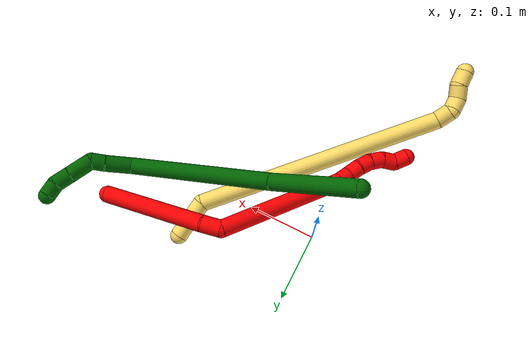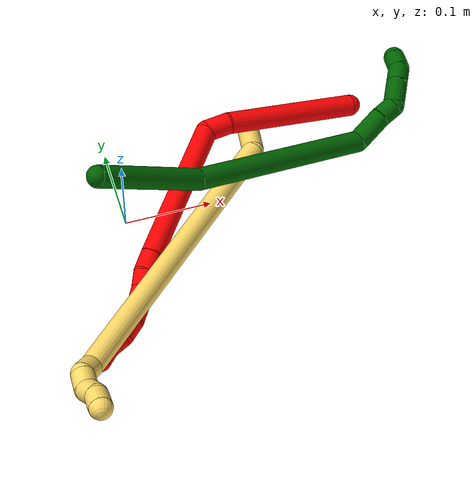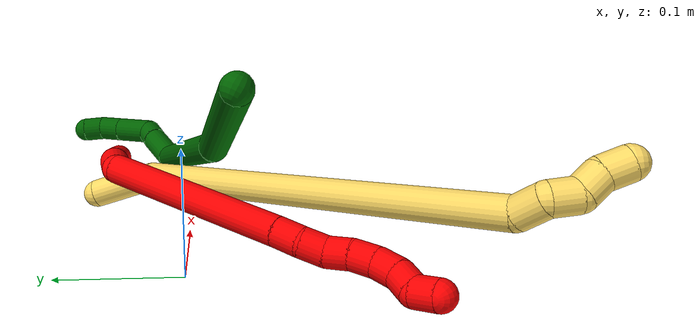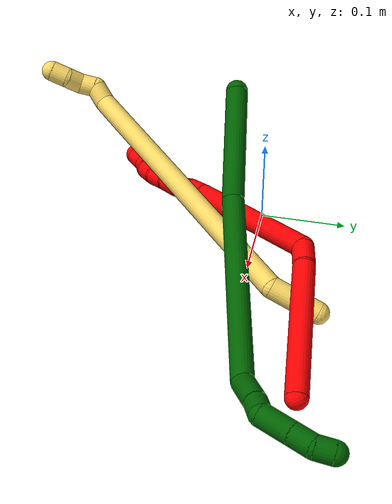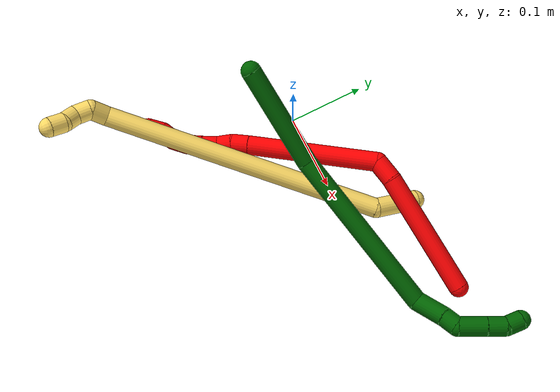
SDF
<sdf version="1.7">
 <world name="default">
  <model name="photoneo_s_sensor">
   <static>1</static>
   <pose>0 0 2 1.57079 1.57079 3.14159</pose>
   <link name="link">
    <inertial><mass>0.1</mass></inertial>
    <sensor name="sensor" type="depth">
     <update_rate>30</update_rate>
     <camera>
      <horizontal_fov>1.22</horizontal_fov>
      <image><width>1920</width><height>1200</height><format>B8G8R8</format></image>
      <clip><near>0.1</near><far>4</far></clip>
      <depth_camera><output>points</output></depth_camera>
     </camera>
     <plugin name="camera_plugin" filename="libgazebo_ros_depth_camera.so">
      <baseline>0.2</baseline>
      <alwaysOn>1</alwaysOn>
      <updateRate>0.0</updateRate>
      <cameraName>camera_ir</cameraName>
      <imageTopicName>/camera/color/image_raw</imageTopicName>
      <cameraInfoTopicName>/camera/color/camera_info</cameraInfoTopicName>
      <depthImageTopicName>/camera/depth/image_raw</depthImageTopicName>
      <depthImageCameraInfoTopicName>/camera/depth/camera_info</depthImageCameraInfoTopicName>
      <pointCloudTopicName>/camera/depth/points</pointCloudTopicName>
      <frameName>fr_optical</frameName>
      <pointCloudCutoff>0.1</pointCloudCutoff>
      <pointCloudCutoffMax>2.0</pointCloudCutoffMax>
      <distortionK1>0</distortionK1>
      <distortionK2>0</distortionK2>
      <distortionK3>0</distortionK3>
      <distortionT1>0</distortionT1>
      <distortionT2>0</distortionT2>
      <CxPrime>0</CxPrime>
      <Cx>0</Cx>
      <Cy>0</Cy>
      <focalLength>0</focalLength>
      <hackBaseline>0</hackBaseline>
     </plugin>
    </sensor>
   </link>
  </model>
  <model name="bin">
   <static>1</static>
   <link name="bottom">
    <collision name="collision-bottom">
     <pose>0 0 -0.01 0 -0 0</pose>
     <geometry><box><size>0.8 0.6 0.02</size></box></geometry>
     <surface>
      <friction><ode><mu>100</mu><mu2>100</mu2></ode></friction>
      <contact><collide_bitmask>65535</collide_bitmask></contact>
     </surface>
    </collision>
   </link>
   <link name="west_wall">
    <collision name="collision-west_wall">
     <pose>-0.41 0 0.1 0 -0 0</pose>
     <geometry><box><size>0.02 0.6 0.2</size></box></geometry>
     <surface>
      <friction><ode><mu>100</mu><mu2>100</mu2></ode></friction>
      <contact><collide_bitmask>65535</collide_bitmask></contact>
     </surface>
    </collision>
   </link>
   <link name="east_wall">
    <collision name="collision-east_wall">
     <pose>0.41 0 0.1 0 -0 0</pose>
     <geometry><box><size>0.02 0.6 0.2</size></box></geometry>
     <surface>
      <friction><ode><mu>100</mu><mu2>100</mu2></ode></friction>
      <contact><collide_bitmask>65535</collide_bitmask></contact>
     </surface>
    </collision>
   </link>
   <link name="south_wall">
    <collision name="collision-south_wall">
     <pose>0 -0.31 0.1 0 -0 0</pose>
     <geometry><box><size>0.8 0.02 0.2</size></box></geometry>
     <surface>
      <friction><ode><mu>100</mu><mu2>100</mu2></ode></friction>
      <contact><collide_bitmask>65535</collide_bitmask></contact>
     </surface>
    </collision>
   </link>
   <link name="north_wall">
    <collision name="collision-north_wall">
     <pose>0 0.31 0.1 0 -0 0</pose>
     <geometry><box><size>0.8 0.02 0.2</size></box></geometry>
     <surface>
      <friction><ode><mu>100</mu><mu2>100</mu2></ode></friction>
      <contact><collide_bitmask>65535</collide_bitmask></contact>
     </surface>
    </collision>
   </link>
  </model>
  <model name="2">
   <static>0</static>
   <link name="2">
    <collision name="collision-cylinder-e_1_1_4">
     <pose>-0.045443 -0.034044 0.056692 0.540791 -0.602076 -0.171694</pose>
     <geometry><cylinder><radius>0.0125</radius><length>0.160476</length></cylinder></geometry>
     <surface>
      <friction><ode><mu>1.16</mu><mu2>1.16</mu2><slip1>0</slip1><slip2>0</slip2></ode></friction>
      <contact><ode><kp>1e+06</kp><kd>1</kd><max_vel>0</max_vel><min_depth>0.001</min_depth></ode></contact>
     </surface>
    </collision>
    <visual name="visual-cylinder-e_1_1_4">
     <pose>-0.045443 -0.034044 0.056692 0.540791 -0.602076 -0.171694</pose>
     <geometry><cylinder><radius>0.0125</radius><length>0.160476</length></cylinder></geometry>
     <material><ambient>1 0 0 1</ambient></material>
    </visual>
    <collision name="collision-cylinder-e_2_4_5">
     <pose>-0.100859 -0.072039 0.122672 0.402217 -0.779429 -0.167073</pose>
     <geometry><cylinder><radius>0.0125</radius><length>0.028378</length></cylinder></geometry>
     <surface>
      <friction><ode><mu>1.16</mu><mu2>1.16</mu2><slip1>0</slip1><slip2>0</slip2></ode></friction>
      <contact><ode><kp>1e+06</kp><kd>1</kd><max_vel>0</max_vel><min_depth>0.001</min_depth></ode></contact>
     </surface>
    </collision>
    <visual name="visual-cylinder-e_2_4_5">
     <pose>-0.100859 -0.072039 0.122672 0.402217 -0.779429 -0.167073</pose>
     <geometry><cylinder><radius>0.0125</radius><length>0.028378</length></cylinder></geometry>
     <material><ambient>1 0 0 1</ambient></material>
    </visual>
    <collision name="collision-cylinder-e_3_5_6">
     <pose>-0.192776 -0.094385 0.129532 1.70201 -1.34812 -1.47799</pose>
     <geometry><cylinder><radius>0.0125</radius><length>0.168037</length></cylinder></geometry>
     <surface>
      <friction><ode><mu>1.16</mu><mu2>1.16</mu2><slip1>0</slip1><slip2>0</slip2></ode></friction>
      <contact><ode><kp>1e+06</kp><kd>1</kd><max_vel>0</max_vel><min_depth>0.001</min_depth></ode></contact>
     </surface>
    </collision>
    <visual name="visual-cylinder-e_3_5_6">
     <pose>-0.192776 -0.094385 0.129532 1.70201 -1.34812 -1.47799</pose>
     <geometry><cylinder><radius>0.0125</radius><length>0.168037</length></cylinder></geometry>
     <material><ambient>1 0 0 1</ambient></material>
    </visual>
    <collision name="collision-cylinder-e_4_6_7">
     <pose>-0.285558 -0.114702 0.126561 1.84654 -1.38857 -1.66671</pose>
     <geometry><cylinder><radius>0.0125</radius><length>0.02204</length></cylinder></geometry>
     <surface>
      <friction><ode><mu>1.16</mu><mu2>1.16</mu2><slip1>0</slip1><slip2>0</slip2></ode></friction>
      <contact><ode><kp>1e+06</kp><kd>1</kd><max_vel>0</max_vel><min_depth>0.001</min_depth></ode></contact>
     </surface>
    </collision>
    <visual name="visual-cylinder-e_4_6_7">
     <pose>-0.285558 -0.114702 0.126561 1.84654 -1.38857 -1.66671</pose>
     <geometry><cylinder><radius>0.0125</radius><length>0.02204</length></cylinder></geometry>
     <material><ambient>1 0 0 1</ambient></material>
    </visual>
    <collision name="collision-cylinder-e_5_7_8">
     <pose>-0.306146 -0.117605 0.123247 2.80109 -1.27809 -2.68686</pose>
     <geometry><cylinder><radius>0.0125</radius><length>0.020368</length></cylinder></geometry>
     <surface>
      <friction><ode><mu>1.16</mu><mu2>1.16</mu2><slip1>0</slip1><slip2>0</slip2></ode></friction>
      <contact><ode><kp>1e+06</kp><kd>1</kd><max_vel>0</max_vel><min_depth>0.001</min_depth></ode></contact>
     </surface>
    </collision>
    <visual name="visual-cylinder-e_5_7_8">
     <pose>-0.306146 -0.117605 0.123247 2.80109 -1.27809 -2.68686</pose>
     <geometry><cylinder><radius>0.0125</radius><length>0.020368</length></cylinder></geometry>
     <material><ambient>1 0 0 1</ambient></material>
    </visual>
    <collision name="collision-cylinder-e_6_8_9">
     <pose>-0.324944 -0.122734 0.118523 2.0111 -1.10171 -1.53876</pose>
     <geometry><cylinder><radius>0.0125</radius><length>0.020285</length></cylinder></geometry>
     <surface>
      <friction><ode><mu>1.16</mu><mu2>1.16</mu2><slip1>0</slip1><slip2>0</slip2></ode></friction>
      <contact><ode><kp>1e+06</kp><kd>1</kd><max_vel>0</max_vel><min_depth>0.001</min_depth></ode></contact>
     </surface>
    </collision>
    <visual name="visual-cylinder-e_6_8_9">
     <pose>-0.324944 -0.122734 0.118523 2.0111 -1.10171 -1.53876</pose>
     <geometry><cylinder><radius>0.0125</radius><length>0.020285</length></cylinder></geometry>
     <material><ambient>1 0 0 1</ambient></material>
    </visual>
    <collision name="collision-cylinder-e_7_9_10">
     <pose>-0.343651 -0.129343 0.115562 1.95892 -1.30217 -1.6968</pose>
     <geometry><cylinder><radius>0.0125</radius><length>0.02004</length></cylinder></geometry>
     <surface>
      <friction><ode><mu>1.16</mu><mu2>1.16</mu2><slip1>0</slip1><slip2>0</slip2></ode></friction>
      <contact><ode><kp>1e+06</kp><kd>1</kd><max_vel>0</max_vel><min_depth>0.001</min_depth></ode></contact>
     </surface>
    </collision>
    <visual name="visual-cylinder-e_7_9_10">
     <pose>-0.343651 -0.129343 0.115562 1.95892 -1.30217 -1.6968</pose>
     <geometry><cylinder><radius>0.0125</radius><length>0.02004</length></cylinder></geometry>
     <material><ambient>1 0 0 1</ambient></material>
    </visual>
    <collision name="collision-cylinder-e_8_10_11">
     <pose>-0.363081 -0.133616 0.116032 0.886897 -1.33607 -0.717199</pose>
     <geometry><cylinder><radius>0.0125</radius><length>0.020089</length></cylinder></geometry>
     <surface>
      <friction><ode><mu>1.16</mu><mu2>1.16</mu2><slip1>0</slip1><slip2>0</slip2></ode></friction>
      <contact><ode><kp>1e+06</kp><kd>1</kd><max_vel>0</max_vel><min_depth>0.001</min_depth></ode></contact>
     </surface>
    </collision>
    <visual name="visual-cylinder-e_8_10_11">
     <pose>-0.363081 -0.133616 0.116032 0.886897 -1.33607 -0.717199</pose>
     <geometry><cylinder><radius>0.0125</radius><length>0.020089</length></cylinder></geometry>
     <material><ambient>1 0 0 1</ambient></material>
    </visual>
    <collision name="collision-cylinder-e_9_11_12">
     <pose>-0.38177 -0.135722 0.122326 0.061247 -1.07472 -0.036501</pose>
     <geometry><cylinder><radius>0.0125</radius><length>0.020284</length></cylinder></geometry>
     <surface>
      <friction><ode><mu>1.16</mu><mu2>1.16</mu2><slip1>0</slip1><slip2>0</slip2></ode></friction>
      <contact><ode><kp>1e+06</kp><kd>1</kd><max_vel>0</max_vel><min_depth>0.001</min_depth></ode></contact>
     </surface>
    </collision>
    <visual name="visual-cylinder-e_9_11_12">
     <pose>-0.38177 -0.135722 0.122326 0.061247 -1.07472 -0.036501</pose>
     <geometry><cylinder><radius>0.0125</radius><length>0.020284</length></cylinder></geometry>
     <material><ambient>1 0 0 1</ambient></material>
    </visual>
    <collision name="collision-cylinder-e_10_12_2">
     <pose>-0.399566 -0.140601 0.127618 1.46778 -1.09197 -1.00264</pose>
     <geometry><cylinder><radius>0.0125</radius><length>0.020003</length></cylinder></geometry>
     <surface>
      <friction><ode><mu>1.16</mu><mu2>1.16</mu2><slip1>0</slip1><slip2>0</slip2></ode></friction>
      <contact><ode><kp>1e+06</kp><kd>1</kd><max_vel>0</max_vel><min_depth>0.001</min_depth></ode></contact>
     </surface>
    </collision>
    <visual name="visual-cylinder-e_10_12_2">
     <pose>-0.399566 -0.140601 0.127618 1.46778 -1.09197 -1.00264</pose>
     <geometry><cylinder><radius>0.0125</radius><length>0.020003</length></cylinder></geometry>
     <material><ambient>1 0 0 1</ambient></material>
    </visual>
    <collision name="collision-sphere-2">
     <pose>-0.408443 -0.145185 0.128092 0 -0 0</pose>
     <geometry><sphere><radius>0.0125</radius></sphere></geometry>
     <surface>
      <friction><ode><mu>1.16</mu><mu2>1.16</mu2><slip1>0</slip1><slip2>0</slip2></ode></friction>
      <contact><ode><kp>1e+06</kp><kd>1</kd><max_vel>0</max_vel><min_depth>0.001</min_depth></ode></contact>
     </surface>
    </collision>
    <visual name="visual-sphere-2">
     <pose>-0.408443 -0.145185 0.128092 0 -0 0</pose>
     <geometry><sphere><radius>0.0125</radius></sphere></geometry>
     <material><ambient>1 0 0 1</ambient></material>
    </visual>
    <collision name="collision-sphere-12">
     <pose>-0.390689 -0.136017 0.127145 0 -0 0</pose>
     <geometry><sphere><radius>0.0125</radius></sphere></geometry>
     <surface>
      <friction><ode><mu>1.16</mu><mu2>1.16</mu2><slip1>0</slip1><slip2>0</slip2></ode></friction>
      <contact><ode><kp>1e+06</kp><kd>1</kd><max_vel>0</max_vel><min_depth>0.001</min_depth></ode></contact>
     </surface>
    </collision>
    <visual name="visual-sphere-12">
     <pose>-0.390689 -0.136017 0.127145 0 -0 0</pose>
     <geometry><sphere><radius>0.0125</radius></sphere></geometry>
     <material><ambient>1 0 0 1</ambient></material>
    </visual>
    <collision name="collision-sphere-11">
     <pose>-0.372851 -0.135427 0.117508 0 -0 0</pose>
     <geometry><sphere><radius>0.0125</radius></sphere></geometry>
     <surface>
      <friction><ode><mu>1.16</mu><mu2>1.16</mu2><slip1>0</slip1><slip2>0</slip2></ode></friction>
      <contact><ode><kp>1e+06</kp><kd>1</kd><max_vel>0</max_vel><min_depth>0.001</min_depth></ode></contact>
     </surface>
    </collision>
    <visual name="visual-sphere-11">
     <pose>-0.372851 -0.135427 0.117508 0 -0 0</pose>
     <geometry><sphere><radius>0.0125</radius></sphere></geometry>
     <material><ambient>1 0 0 1</ambient></material>
    </visual>
    <collision name="collision-sphere-10">
     <pose>-0.353312 -0.131805 0.114556 0 -0 0</pose>
     <geometry><sphere><radius>0.0125</radius></sphere></geometry>
     <surface>
      <friction><ode><mu>1.16</mu><mu2>1.16</mu2><slip1>0</slip1><slip2>0</slip2></ode></friction>
      <contact><ode><kp>1e+06</kp><kd>1</kd><max_vel>0</max_vel><min_depth>0.001</min_depth></ode></contact>
     </surface>
    </collision>
    <visual name="visual-sphere-10">
     <pose>-0.353312 -0.131805 0.114556 0 -0 0</pose>
     <geometry><sphere><radius>0.0125</radius></sphere></geometry>
     <material><ambient>1 0 0 1</ambient></material>
    </visual>
    <collision name="collision-sphere-9">
     <pose>-0.333991 -0.126882 0.116569 0 -0 0</pose>
     <geometry><sphere><radius>0.0125</radius></sphere></geometry>
     <surface>
      <friction><ode><mu>1.16</mu><mu2>1.16</mu2><slip1>0</slip1><slip2>0</slip2></ode></friction>
      <contact><ode><kp>1e+06</kp><kd>1</kd><max_vel>0</max_vel><min_depth>0.001</min_depth></ode></contact>
     </surface>
    </collision>
    <visual name="visual-sphere-9">
     <pose>-0.333991 -0.126882 0.116569 0 -0 0</pose>
     <geometry><sphere><radius>0.0125</radius></sphere></geometry>
     <material><ambient>1 0 0 1</ambient></material>
    </visual>
    <collision name="collision-sphere-4">
     <pose>-0.090886 -0.068088 0.113385 0 -0 0</pose>
     <geometry><sphere><radius>0.0125</radius></sphere></geometry>
     <surface>
      <friction><ode><mu>1.16</mu><mu2>1.16</mu2><slip1>0</slip1><slip2>0</slip2></ode></friction>
      <contact><ode><kp>1e+06</kp><kd>1</kd><max_vel>0</max_vel><min_depth>0.001</min_depth></ode></contact>
     </surface>
    </collision>
    <visual name="visual-sphere-4">
     <pose>-0.090886 -0.068088 0.113385 0 -0 0</pose>
     <geometry><sphere><radius>0.0125</radius></sphere></geometry>
     <material><ambient>1 0 0 1</ambient></material>
    </visual>
    <collision name="collision-sphere-1">
     <geometry><sphere><radius>0.0125</radius></sphere></geometry>
     <surface>
      <friction><ode><mu>1.16</mu><mu2>1.16</mu2><slip1>0</slip1><slip2>0</slip2></ode></friction>
      <contact><ode><kp>1e+06</kp><kd>1</kd><max_vel>0</max_vel><min_depth>0.001</min_depth></ode></contact>
     </surface>
    </collision>
    <visual name="visual-sphere-1">
     <geometry><sphere><radius>0.0125</radius></sphere></geometry>
     <material><ambient>1 0 0 1</ambient></material>
    </visual>
    <collision name="collision-sphere-8">
     <pose>-0.315897 -0.118586 0.120477 0 -0 0</pose>
     <geometry><sphere><radius>0.0125</radius></sphere></geometry>
     <surface>
      <friction><ode><mu>1.16</mu><mu2>1.16</mu2><slip1>0</slip1><slip2>0</slip2></ode></friction>
      <contact><ode><kp>1e+06</kp><kd>1</kd><max_vel>0</max_vel><min_depth>0.001</min_depth></ode></contact>
     </surface>
    </collision>
    <visual name="visual-sphere-8">
     <pose>-0.315897 -0.118586 0.120477 0 -0 0</pose>
     <geometry><sphere><radius>0.0125</radius></sphere></geometry>
     <material><ambient>1 0 0 1</ambient></material>
    </visual>
    <collision name="collision-sphere-5">
     <pose>-0.110832 -0.07599 0.13196 0 -0 0</pose>
     <geometry><sphere><radius>0.0125</radius></sphere></geometry>
     <surface>
      <friction><ode><mu>1.16</mu><mu2>1.16</mu2><slip1>0</slip1><slip2>0</slip2></ode></friction>
      <contact><ode><kp>1e+06</kp><kd>1</kd><max_vel>0</max_vel><min_depth>0.001</min_depth></ode></contact>
     </surface>
    </collision>
    <visual name="visual-sphere-5">
     <pose>-0.110832 -0.07599 0.13196 0 -0 0</pose>
     <geometry><sphere><radius>0.0125</radius></sphere></geometry>
     <material><ambient>1 0 0 1</ambient></material>
    </visual>
    <collision name="collision-sphere-6">
     <pose>-0.27472 -0.11278 0.127104 0 -0 0</pose>
     <geometry><sphere><radius>0.0125</radius></sphere></geometry>
     <surface>
      <friction><ode><mu>1.16</mu><mu2>1.16</mu2><slip1>0</slip1><slip2>0</slip2></ode></friction>
      <contact><ode><kp>1e+06</kp><kd>1</kd><max_vel>0</max_vel><min_depth>0.001</min_depth></ode></contact>
     </surface>
    </collision>
    <visual name="visual-sphere-6">
     <pose>-0.27472 -0.11278 0.127104 0 -0 0</pose>
     <geometry><sphere><radius>0.0125</radius></sphere></geometry>
     <material><ambient>1 0 0 1</ambient></material>
    </visual>
    <collision name="collision-sphere-7">
     <pose>-0.296395 -0.116624 0.126017 0 -0 0</pose>
     <geometry><sphere><radius>0.0125</radius></sphere></geometry>
     <surface>
      <friction><ode><mu>1.16</mu><mu2>1.16</mu2><slip1>0</slip1><slip2>0</slip2></ode></friction>
      <contact><ode><kp>1e+06</kp><kd>1</kd><max_vel>0</max_vel><min_depth>0.001</min_depth></ode></contact>
     </surface>
    </collision>
    <visual name="visual-sphere-7">
     <pose>-0.296395 -0.116624 0.126017 0 -0 0</pose>
     <geometry><sphere><radius>0.0125</radius></sphere></geometry>
     <material><ambient>1 0 0 1</ambient></material>
    </visual>
    <inertial>
     <pose>-0.183172 -0.083245 0.10346 0 -0 0</pose>
     <mass>0.5</mass>
     <inertia>
      <ixx>0.000124</ixx>
      <ixy>0</ixy>
      <ixz>0</ixz>
      <iyy>0.000557</iyy>
      <iyz>0</iyz>
      <izz>0.000853</izz>
     </inertia>
    </inertial>
   </link>
   <pose>0.296326 0.08392 0.012449 -1.50734 -0.3551 0.87862</pose>
  </model>
  <model name="5">
   <static>0</static>
   <link name="5">
    <collision name="collision-cylinder-e_1_1_4">
     <pose>-0.007293 -0.000369 0.027575 0.013381 -0.258518 -0.001739</pose>
     <geometry><cylinder><radius>0.0125</radius><length>0.057052</length></cylinder></geometry>
     <surface>
      <friction><ode><mu>1.16</mu><mu2>1.16</mu2><slip1>0</slip1><slip2>0</slip2></ode></friction>
      <contact><ode><kp>1e+06</kp><kd>1</kd><max_vel>0</max_vel><min_depth>0.001</min_depth></ode></contact>
     </surface>
    </collision>
    <visual name="visual-cylinder-e_1_1_4">
     <pose>-0.007293 -0.000369 0.027575 0.013381 -0.258518 -0.001739</pose>
     <geometry><cylinder><radius>0.0125</radius><length>0.057052</length></cylinder></geometry>
     <material><ambient>1 0.858824 0.4 1</ambient></material>
    </visual>
    <collision name="collision-cylinder-e_2_4_5">
     <pose>-0.062048 -0.106567 0.192363 0.65698 -0.267346 -0.091604</pose>
     <geometry><cylinder><radius>0.0125</radius><length>0.359331</length></cylinder></geometry>
     <surface>
      <friction><ode><mu>1.16</mu><mu2>1.16</mu2><slip1>0</slip1><slip2>0</slip2></ode></friction>
      <contact><ode><kp>1e+06</kp><kd>1</kd><max_vel>0</max_vel><min_depth>0.001</min_depth></ode></contact>
     </surface>
    </collision>
    <visual name="visual-cylinder-e_2_4_5">
     <pose>-0.062048 -0.106567 0.192363 0.65698 -0.267346 -0.091604</pose>
     <geometry><cylinder><radius>0.0125</radius><length>0.359331</length></cylinder></geometry>
     <material><ambient>1 0.858824 0.4 1</ambient></material>
    </visual>
    <collision name="collision-cylinder-e_3_5_6">
     <pose>-0.116951 -0.215411 0.337875 0.348447 -0.700212 -0.128362</pose>
     <geometry><cylinder><radius>0.0125</radius><length>0.023095</length></cylinder></geometry>
     <surface>
      <friction><ode><mu>1.16</mu><mu2>1.16</mu2><slip1>0</slip1><slip2>0</slip2></ode></friction>
      <contact><ode><kp>1e+06</kp><kd>1</kd><max_vel>0</max_vel><min_depth>0.001</min_depth></ode></contact>
     </surface>
    </collision>
    <visual name="visual-cylinder-e_3_5_6">
     <pose>-0.116951 -0.215411 0.337875 0.348447 -0.700212 -0.128362</pose>
     <geometry><cylinder><radius>0.0125</radius><length>0.023095</length></cylinder></geometry>
     <material><ambient>1 0.858824 0.4 1</ambient></material>
    </visual>
    <collision name="collision-cylinder-e_4_6_7">
     <pose>-0.124512 -0.217947 0.356323 -0.047096 -0.011757 0.000277</pose>
     <geometry><cylinder><radius>0.0125</radius><length>0.020321</length></cylinder></geometry>
     <surface>
      <friction><ode><mu>1.16</mu><mu2>1.16</mu2><slip1>0</slip1><slip2>0</slip2></ode></friction>
      <contact><ode><kp>1e+06</kp><kd>1</kd><max_vel>0</max_vel><min_depth>0.001</min_depth></ode></contact>
     </surface>
    </collision>
    <visual name="visual-cylinder-e_4_6_7">
     <pose>-0.124512 -0.217947 0.356323 -0.047096 -0.011757 0.000277</pose>
     <geometry><cylinder><radius>0.0125</radius><length>0.020321</length></cylinder></geometry>
     <material><ambient>1 0.858824 0.4 1</ambient></material>
    </visual>
    <collision name="collision-cylinder-e_5_7_8">
     <pose>-0.127837 -0.212114 0.37437 -0.595771 -0.324145 0.100316</pose>
     <geometry><cylinder><radius>0.0125</radius><length>0.020134</length></cylinder></geometry>
     <surface>
      <friction><ode><mu>1.16</mu><mu2>1.16</mu2><slip1>0</slip1><slip2>0</slip2></ode></friction>
      <contact><ode><kp>1e+06</kp><kd>1</kd><max_vel>0</max_vel><min_depth>0.001</min_depth></ode></contact>
     </surface>
    </collision>
    <visual name="visual-cylinder-e_5_7_8">
     <pose>-0.127837 -0.212114 0.37437 -0.595771 -0.324145 0.100316</pose>
     <geometry><cylinder><radius>0.0125</radius><length>0.020134</length></cylinder></geometry>
     <material><ambient>1 0.858824 0.4 1</ambient></material>
    </visual>
    <collision name="collision-cylinder-e_6_8_2">
     <pose>-0.133276 -0.20511 0.391912 -0.169405 -0.224337 0.019127</pose>
     <geometry><cylinder><radius>0.0125</radius><length>0.020068</length></cylinder></geometry>
     <surface>
      <friction><ode><mu>1.16</mu><mu2>1.16</mu2><slip1>0</slip1><slip2>0</slip2></ode></friction>
      <contact><ode><kp>1e+06</kp><kd>1</kd><max_vel>0</max_vel><min_depth>0.001</min_depth></ode></contact>
     </surface>
    </collision>
    <visual name="visual-cylinder-e_6_8_2">
     <pose>-0.133276 -0.20511 0.391912 -0.169405 -0.224337 0.019127</pose>
     <geometry><cylinder><radius>0.0125</radius><length>0.020068</length></cylinder></geometry>
     <material><ambient>1 0.858824 0.4 1</ambient></material>
    </visual>
    <collision name="collision-sphere-2">
     <pose>-0.135508 -0.203461 0.401554 0 -0 0</pose>
     <geometry><sphere><radius>0.0125</radius></sphere></geometry>
     <surface>
      <friction><ode><mu>1.16</mu><mu2>1.16</mu2><slip1>0</slip1><slip2>0</slip2></ode></friction>
      <contact><ode><kp>1e+06</kp><kd>1</kd><max_vel>0</max_vel><min_depth>0.001</min_depth></ode></contact>
     </surface>
    </collision>
    <visual name="visual-sphere-2">
     <pose>-0.135508 -0.203461 0.401554 0 -0 0</pose>
     <geometry><sphere><radius>0.0125</radius></sphere></geometry>
     <material><ambient>1 0.858824 0.4 1</ambient></material>
    </visual>
    <collision name="collision-sphere-4">
     <pose>-0.014585 -0.000738 0.055151 0 -0 0</pose>
     <geometry><sphere><radius>0.0125</radius></sphere></geometry>
     <surface>
      <friction><ode><mu>1.16</mu><mu2>1.16</mu2><slip1>0</slip1><slip2>0</slip2></ode></friction>
      <contact><ode><kp>1e+06</kp><kd>1</kd><max_vel>0</max_vel><min_depth>0.001</min_depth></ode></contact>
     </surface>
    </collision>
    <visual name="visual-sphere-4">
     <pose>-0.014585 -0.000738 0.055151 0 -0 0</pose>
     <geometry><sphere><radius>0.0125</radius></sphere></geometry>
     <material><ambient>1 0.858824 0.4 1</ambient></material>
    </visual>
    <collision name="collision-sphere-1">
     <geometry><sphere><radius>0.0125</radius></sphere></geometry>
     <surface>
      <friction><ode><mu>1.16</mu><mu2>1.16</mu2><slip1>0</slip1><slip2>0</slip2></ode></friction>
      <contact><ode><kp>1e+06</kp><kd>1</kd><max_vel>0</max_vel><min_depth>0.001</min_depth></ode></contact>
     </surface>
    </collision>
    <visual name="visual-sphere-1">
     <geometry><sphere><radius>0.0125</radius></sphere></geometry>
     <material><ambient>1 0.858824 0.4 1</ambient></material>
    </visual>
    <collision name="collision-sphere-8">
     <pose>-0.131044 -0.206759 0.382269 0 -0 0</pose>
     <geometry><sphere><radius>0.0125</radius></sphere></geometry>
     <surface>
      <friction><ode><mu>1.16</mu><mu2>1.16</mu2><slip1>0</slip1><slip2>0</slip2></ode></friction>
      <contact><ode><kp>1e+06</kp><kd>1</kd><max_vel>0</max_vel><min_depth>0.001</min_depth></ode></contact>
     </surface>
    </collision>
    <visual name="visual-sphere-8">
     <pose>-0.131044 -0.206759 0.382269 0 -0 0</pose>
     <geometry><sphere><radius>0.0125</radius></sphere></geometry>
     <material><ambient>1 0.858824 0.4 1</ambient></material>
    </visual>
    <collision name="collision-sphere-5">
     <pose>-0.109511 -0.212396 0.329576 0 -0 0</pose>
     <geometry><sphere><radius>0.0125</radius></sphere></geometry>
     <surface>
      <friction><ode><mu>1.16</mu><mu2>1.16</mu2><slip1>0</slip1><slip2>0</slip2></ode></friction>
      <contact><ode><kp>1e+06</kp><kd>1</kd><max_vel>0</max_vel><min_depth>0.001</min_depth></ode></contact>
     </surface>
    </collision>
    <visual name="visual-sphere-5">
     <pose>-0.109511 -0.212396 0.329576 0 -0 0</pose>
     <geometry><sphere><radius>0.0125</radius></sphere></geometry>
     <material><ambient>1 0.858824 0.4 1</ambient></material>
    </visual>
    <collision name="collision-sphere-6">
     <pose>-0.124392 -0.218426 0.346175 0 -0 0</pose>
     <geometry><sphere><radius>0.0125</radius></sphere></geometry>
     <surface>
      <friction><ode><mu>1.16</mu><mu2>1.16</mu2><slip1>0</slip1><slip2>0</slip2></ode></friction>
      <contact><ode><kp>1e+06</kp><kd>1</kd><max_vel>0</max_vel><min_depth>0.001</min_depth></ode></contact>
     </surface>
    </collision>
    <visual name="visual-sphere-6">
     <pose>-0.124392 -0.218426 0.346175 0 -0 0</pose>
     <geometry><sphere><radius>0.0125</radius></sphere></geometry>
     <material><ambient>1 0.858824 0.4 1</ambient></material>
    </visual>
    <collision name="collision-sphere-7">
     <pose>-0.124631 -0.217469 0.366472 0 -0 0</pose>
     <geometry><sphere><radius>0.0125</radius></sphere></geometry>
     <surface>
      <friction><ode><mu>1.16</mu><mu2>1.16</mu2><slip1>0</slip1><slip2>0</slip2></ode></friction>
      <contact><ode><kp>1e+06</kp><kd>1</kd><max_vel>0</max_vel><min_depth>0.001</min_depth></ode></contact>
     </surface>
    </collision>
    <visual name="visual-sphere-7">
     <pose>-0.124631 -0.217469 0.366472 0 -0 0</pose>
     <geometry><sphere><radius>0.0125</radius></sphere></geometry>
     <material><ambient>1 0.858824 0.4 1</ambient></material>
    </visual>
    <inertial>
     <pose>-0.066383 -0.112209 0.202283 0 -0 0</pose>
     <mass>0.5</mass>
     <inertia>
      <ixx>0.003397</ixx>
      <ixy>0</ixy>
      <ixz>0</ixz>
      <iyy>0.002782</iyy>
      <iyz>0</iyz>
      <izz>0.003348</izz>
     </inertia>
    </inertial>
   </link>
   <pose>0.17078 0.089195 0.012324 1.28511 1.22205 -0.339595</pose>
  </model>
  <model name="6">
   <static>0</static>
   <link name="6">
    <collision name="collision-cylinder-e_1_1_4">
     <pose>0.052209 0.040701 0.012307 -1.27716 0.887308 -0.678327</pose>
     <geometry><cylinder><radius>0.0125</radius><length>0.134667</length></cylinder></geometry>
     <surface>
      <friction><ode><mu>1.16</mu><mu2>1.16</mu2><slip1>0</slip1><slip2>0</slip2></ode></friction>
      <contact><ode><kp>1e+06</kp><kd>1</kd><max_vel>0</max_vel><min_depth>0.001</min_depth></ode></contact>
     </surface>
    </collision>
    <visual name="visual-cylinder-e_1_1_4">
     <pose>0.052209 0.040701 0.012307 -1.27716 0.887308 -0.678327</pose>
     <geometry><cylinder><radius>0.0125</radius><length>0.134667</length></cylinder></geometry>
     <material><ambient>0 0.392157 0.003922 1</ambient></material>
    </visual>
    <collision name="collision-cylinder-e_2_4_5">
     <pose>0.203934 0.131909 0.026001 -1.54335 1.101 -1.07668</pose>
     <geometry><cylinder><radius>0.0125</radius><length>0.223216</length></cylinder></geometry>
     <surface>
      <friction><ode><mu>1.16</mu><mu2>1.16</mu2><slip1>0</slip1><slip2>0</slip2></ode></friction>
      <contact><ode><kp>1e+06</kp><kd>1</kd><max_vel>0</max_vel><min_depth>0.001</min_depth></ode></contact>
     </surface>
    </collision>
    <visual name="visual-cylinder-e_2_4_5">
     <pose>0.203934 0.131909 0.026001 -1.54335 1.101 -1.07668</pose>
     <geometry><cylinder><radius>0.0125</radius><length>0.223216</length></cylinder></geometry>
     <material><ambient>0 0.392157 0.003922 1</ambient></material>
    </visual>
    <collision name="collision-cylinder-e_3_5_6">
     <pose>0.322559 0.180619 0.021103 2.86338 1.2412 2.75474</pose>
     <geometry><cylinder><radius>0.0125</radius><length>0.040391</length></cylinder></geometry>
     <surface>
      <friction><ode><mu>1.16</mu><mu2>1.16</mu2><slip1>0</slip1><slip2>0</slip2></ode></friction>
      <contact><ode><kp>1e+06</kp><kd>1</kd><max_vel>0</max_vel><min_depth>0.001</min_depth></ode></contact>
     </surface>
    </collision>
    <visual name="visual-cylinder-e_3_5_6">
     <pose>0.322559 0.180619 0.021103 2.86338 1.2412 2.75474</pose>
     <geometry><cylinder><radius>0.0125</radius><length>0.040391</length></cylinder></geometry>
     <material><ambient>0 0.392157 0.003922 1</ambient></material>
    </visual>
    <collision name="collision-cylinder-e_4_6_7">
     <pose>0.351336 0.179214 0.011523 -3.02384 1.24026 -2.97688</pose>
     <geometry><cylinder><radius>0.0125</radius><length>0.020443</length></cylinder></geometry>
     <surface>
      <friction><ode><mu>1.16</mu><mu2>1.16</mu2><slip1>0</slip1><slip2>0</slip2></ode></friction>
      <contact><ode><kp>1e+06</kp><kd>1</kd><max_vel>0</max_vel><min_depth>0.001</min_depth></ode></contact>
     </surface>
    </collision>
    <visual name="visual-cylinder-e_4_6_7">
     <pose>0.351336 0.179214 0.011523 -3.02384 1.24026 -2.97688</pose>
     <geometry><cylinder><radius>0.0125</radius><length>0.020443</length></cylinder></geometry>
     <material><ambient>0 0.392157 0.003922 1</ambient></material>
    </visual>
    <collision name="collision-cylinder-e_5_7_8">
     <pose>0.377145 0.172725 0.01353 0.914195 1.0772 0.571681</pose>
     <geometry><cylinder><radius>0.0125</radius><length>0.036657</length></cylinder></geometry>
     <surface>
      <friction><ode><mu>1.16</mu><mu2>1.16</mu2><slip1>0</slip1><slip2>0</slip2></ode></friction>
      <contact><ode><kp>1e+06</kp><kd>1</kd><max_vel>0</max_vel><min_depth>0.001</min_depth></ode></contact>
     </surface>
    </collision>
    <visual name="visual-cylinder-e_5_7_8">
     <pose>0.377145 0.172725 0.01353 0.914195 1.0772 0.571681</pose>
     <geometry><cylinder><radius>0.0125</radius><length>0.036657</length></cylinder></geometry>
     <material><ambient>0 0.392157 0.003922 1</ambient></material>
    </visual>
    <collision name="collision-cylinder-e_6_8_9">
     <pose>0.40396 0.161305 0.022275 0.92197 1.08027 0.5789</pose>
     <geometry><cylinder><radius>0.0125</radius><length>0.024203</length></cylinder></geometry>
     <surface>
      <friction><ode><mu>1.16</mu><mu2>1.16</mu2><slip1>0</slip1><slip2>0</slip2></ode></friction>
      <contact><ode><kp>1e+06</kp><kd>1</kd><max_vel>0</max_vel><min_depth>0.001</min_depth></ode></contact>
     </surface>
    </collision>
    <visual name="visual-cylinder-e_6_8_9">
     <pose>0.40396 0.161305 0.022275 0.92197 1.08027 0.5789</pose>
     <geometry><cylinder><radius>0.0125</radius><length>0.024203</length></cylinder></geometry>
     <material><ambient>0 0.392157 0.003922 1</ambient></material>
    </visual>
    <collision name="collision-cylinder-e_7_9_2">
     <pose>0.421104 0.150956 0.031078 0.825531 0.686064 0.310296</pose>
     <geometry><cylinder><radius>0.0125</radius><length>0.020422</length></cylinder></geometry>
     <surface>
      <friction><ode><mu>1.16</mu><mu2>1.16</mu2><slip1>0</slip1><slip2>0</slip2></ode></friction>
      <contact><ode><kp>1e+06</kp><kd>1</kd><max_vel>0</max_vel><min_depth>0.001</min_depth></ode></contact>
     </surface>
    </collision>
    <visual name="visual-cylinder-e_7_9_2">
     <pose>0.421104 0.150956 0.031078 0.825531 0.686064 0.310296</pose>
     <geometry><cylinder><radius>0.0125</radius><length>0.020422</length></cylinder></geometry>
     <material><ambient>0 0.392157 0.003922 1</ambient></material>
    </visual>
    <collision name="collision-sphere-2">
     <pose>0.427572 0.145149 0.036436 0 -0 0</pose>
     <geometry><sphere><radius>0.0125</radius></sphere></geometry>
     <surface>
      <friction><ode><mu>1.16</mu><mu2>1.16</mu2><slip1>0</slip1><slip2>0</slip2></ode></friction>
      <contact><ode><kp>1e+06</kp><kd>1</kd><max_vel>0</max_vel><min_depth>0.001</min_depth></ode></contact>
     </surface>
    </collision>
    <visual name="visual-sphere-2">
     <pose>0.427572 0.145149 0.036436 0 -0 0</pose>
     <geometry><sphere><radius>0.0125</radius></sphere></geometry>
     <material><ambient>0 0.392157 0.003922 1</ambient></material>
    </visual>
    <collision name="collision-sphere-9">
     <pose>0.414635 0.156762 0.02572 0 -0 0</pose>
     <geometry><sphere><radius>0.0125</radius></sphere></geometry>
     <surface>
      <friction><ode><mu>1.16</mu><mu2>1.16</mu2><slip1>0</slip1><slip2>0</slip2></ode></friction>
      <contact><ode><kp>1e+06</kp><kd>1</kd><max_vel>0</max_vel><min_depth>0.001</min_depth></ode></contact>
     </surface>
    </collision>
    <visual name="visual-sphere-9">
     <pose>0.414635 0.156762 0.02572 0 -0 0</pose>
     <geometry><sphere><radius>0.0125</radius></sphere></geometry>
     <material><ambient>0 0.392157 0.003922 1</ambient></material>
    </visual>
    <collision name="collision-sphere-4">
     <pose>0.104418 0.081403 0.024615 0 -0 0</pose>
     <geometry><sphere><radius>0.0125</radius></sphere></geometry>
     <surface>
      <friction><ode><mu>1.16</mu><mu2>1.16</mu2><slip1>0</slip1><slip2>0</slip2></ode></friction>
      <contact><ode><kp>1e+06</kp><kd>1</kd><max_vel>0</max_vel><min_depth>0.001</min_depth></ode></contact>
     </surface>
    </collision>
    <visual name="visual-sphere-4">
     <pose>0.104418 0.081403 0.024615 0 -0 0</pose>
     <geometry><sphere><radius>0.0125</radius></sphere></geometry>
     <material><ambient>0 0.392157 0.003922 1</ambient></material>
    </visual>
    <collision name="collision-sphere-1">
     <geometry><sphere><radius>0.0125</radius></sphere></geometry>
     <surface>
      <friction><ode><mu>1.16</mu><mu2>1.16</mu2><slip1>0</slip1><slip2>0</slip2></ode></friction>
      <contact><ode><kp>1e+06</kp><kd>1</kd><max_vel>0</max_vel><min_depth>0.001</min_depth></ode></contact>
     </surface>
    </collision>
    <visual name="visual-sphere-1">
     <geometry><sphere><radius>0.0125</radius></sphere></geometry>
     <material><ambient>0 0.392157 0.003922 1</ambient></material>
    </visual>
    <collision name="collision-sphere-8">
     <pose>0.393286 0.165847 0.018831 0 -0 0</pose>
     <geometry><sphere><radius>0.0125</radius></sphere></geometry>
     <surface>
      <friction><ode><mu>1.16</mu><mu2>1.16</mu2><slip1>0</slip1><slip2>0</slip2></ode></friction>
      <contact><ode><kp>1e+06</kp><kd>1</kd><max_vel>0</max_vel><min_depth>0.001</min_depth></ode></contact>
     </surface>
    </collision>
    <visual name="visual-sphere-8">
     <pose>0.393286 0.165847 0.018831 0 -0 0</pose>
     <geometry><sphere><radius>0.0125</radius></sphere></geometry>
     <material><ambient>0 0.392157 0.003922 1</ambient></material>
    </visual>
    <collision name="collision-sphere-5">
     <pose>0.30345 0.182415 0.027388 0 -0 0</pose>
     <geometry><sphere><radius>0.0125</radius></sphere></geometry>
     <surface>
      <friction><ode><mu>1.16</mu><mu2>1.16</mu2><slip1>0</slip1><slip2>0</slip2></ode></friction>
      <contact><ode><kp>1e+06</kp><kd>1</kd><max_vel>0</max_vel><min_depth>0.001</min_depth></ode></contact>
     </surface>
    </collision>
    <visual name="visual-sphere-5">
     <pose>0.30345 0.182415 0.027388 0 -0 0</pose>
     <geometry><sphere><radius>0.0125</radius></sphere></geometry>
     <material><ambient>0 0.392157 0.003922 1</ambient></material>
    </visual>
    <collision name="collision-sphere-6">
     <pose>0.341668 0.178824 0.014818 0 -0 0</pose>
     <geometry><sphere><radius>0.0125</radius></sphere></geometry>
     <surface>
      <friction><ode><mu>1.16</mu><mu2>1.16</mu2><slip1>0</slip1><slip2>0</slip2></ode></friction>
      <contact><ode><kp>1e+06</kp><kd>1</kd><max_vel>0</max_vel><min_depth>0.001</min_depth></ode></contact>
     </surface>
    </collision>
    <visual name="visual-sphere-6">
     <pose>0.341668 0.178824 0.014818 0 -0 0</pose>
     <geometry><sphere><radius>0.0125</radius></sphere></geometry>
     <material><ambient>0 0.392157 0.003922 1</ambient></material>
    </visual>
    <collision name="collision-sphere-7">
     <pose>0.361004 0.179604 0.008229 0 -0 0</pose>
     <geometry><sphere><radius>0.0125</radius></sphere></geometry>
     <surface>
      <friction><ode><mu>1.16</mu><mu2>1.16</mu2><slip1>0</slip1><slip2>0</slip2></ode></friction>
      <contact><ode><kp>1e+06</kp><kd>1</kd><max_vel>0</max_vel><min_depth>0.001</min_depth></ode></contact>
     </surface>
    </collision>
    <visual name="visual-sphere-7">
     <pose>0.361004 0.179604 0.008229 0 -0 0</pose>
     <geometry><sphere><radius>0.0125</radius></sphere></geometry>
     <material><ambient>0 0.392157 0.003922 1</ambient></material>
    </visual>
    <inertial>
     <pose>0.20993 0.118406 0.020438 0 -0 0</pose>
     <mass>0.5</mass>
     <inertia>
      <ixx>-0.000114</ixx>
      <ixy>0</ixy>
      <ixz>0</ixz>
      <iyy>0.000466</iyy>
      <iyz>0</iyz>
      <izz>-0.001554</izz>
     </inertia>
    </inertial>
   </link>
   <pose>-0.032952 -0.040437 0.150013 -2.50628 0.020583 0.620776</pose>
  </model>
 </world>
</sdf>
